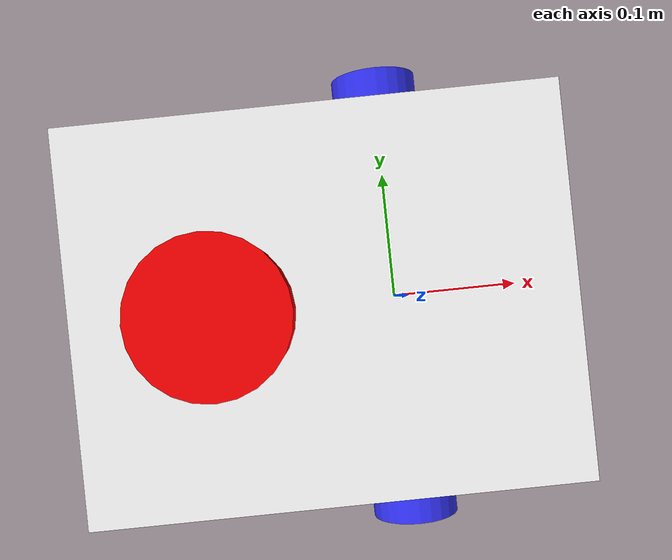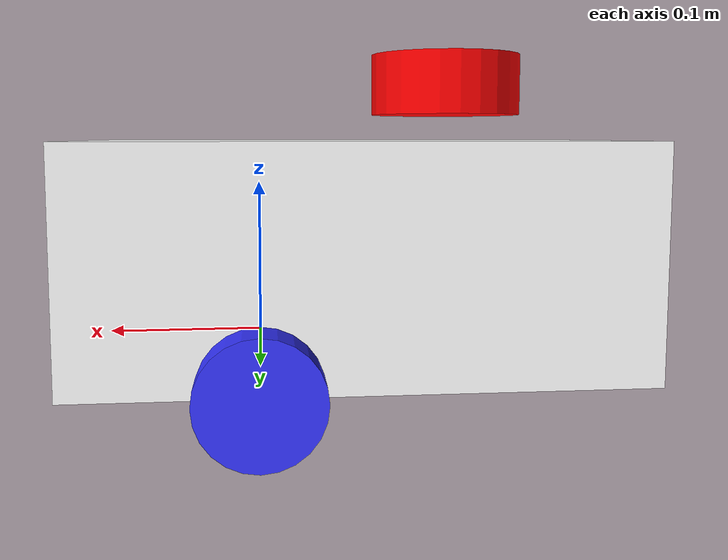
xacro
<?xml version="1.0"?>
<robot xmlns:xacro="http://www.ros.org/wiki/xacro"  name="robot">

    <xacro:include filename="robot_core.xacro" />

    <xacro:include filename="gazebo_control.xacro"/>

    <xacro:include filename="lidar.xacro"/>

</robot>

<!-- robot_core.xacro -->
<robot xmlns:xacro="http://www.ros.org/wiki/xacro" >

    <xacro:include filename="inertial_macros.xacro"/>

    <xacro:property name="chassis_length" value="0.335"/>
    <xacro:property name="chassis_width" value="0.265"/>
    <xacro:property name="chassis_height" value="0.138"/>
    <xacro:property name="chassis_mass" value="1.0"/>
    <xacro:property name="wheel_radius" value="0.034"/>
    <xacro:property name="wheel_thickness" value="0.026"/>
    <xacro:property name="wheel_mass" value="0.05"/>
    <xacro:property name="wheel_offset_x" value="0.226"/>
    <xacro:property name="wheel_offset_y" value="0.166"/>
    <xacro:property name="wheel_offset_z" value="0.01"/>
    <xacro:property name="caster_wheel_radius" value="0.01"/>
    <xacro:property name="caster_wheel_mass" value="0.01"/>
    <xacro:property name="caster_wheel_offset_x" value="0.075"/>
    <xacro:property name="caster_wheel_offset_z" value="${wheel_offset_z - wheel_radius + caster_wheel_radius}"/>

    <material name="white">
        <color rgba="1 1 1 1" />
    </material>

    <material name="orange">
        <color rgba="1 0.3 0.1 1" />
    </material>

    <material name="blue">
        <color rgba="0.2 0.2 1 1" />
    </material>

    <material name="black">
        <color rgba="0 0 0 1" />
    </material>

    <material name="red">
        <color rgba="1 0 0 1" />
    </material>

    <!-- BASE LINK-->
    <link name="base_link">

    </link>

    <!-- CHASSIS LINK-->
    <joint name="chassis_joint" type="fixed">
        <parent link="base_link"/>
        <child link="chassis"/>
        <origin xyz="${-wheel_offset_x} 0 ${-wheel_offset_z}"/>
    </joint>

    <link name="chassis">
        <visual>
            <!-- shift origin of box to center of diff drive wheels-->
            <origin xyz="${chassis_length/2} 0 ${chassis_height/2}"/>
            <geometry>
                <!-- in meters-->
                <box size="${chassis_length} ${chassis_width} ${chassis_height}"/>
            </geometry>
            <material name="white"/>
        </visual>
        <collision>
            <!-- shift origin of box to center of diff drive wheels-->
            <origin xyz="${chassis_length/2} 0 ${chassis_height/2}"/>
            <geometry>
                <!-- in meters-->
                <box size="${chassis_length} ${chassis_width} ${chassis_height}"/>
            </geometry>
        </collision>
        <xacro:inertial_box mass="0.5" x="${chassis_length}" y="${chassis_width}" z="${chassis_height}">
            <origin xyz="${chassis_length/2} 0 ${chassis_height/2}" rpy="0 0 0"/>
        </xacro:inertial_box>
    </link>

    <gazebo reference="chassis">
        <material>Gazebo/White</material>
    </gazebo>

    <!-- LEFT WHEEL LINK-->
    <joint name="left_wheel_joint" type="continuous">
        <parent link="base_link"/>
        <child link="left_wheel"/>
        <!-- rotate wheel so z is out of robot and so cylinder will be able to rotate-->
        <origin xyz="0 ${wheel_offset_y} 0" rpy="-${pi/2} 0 0" />
        <axis xyz="0 0 1"/>
    </joint>

    <link name="left_wheel">
        <visual>
            <geometry>
                <cylinder radius="${wheel_radius}" length="${wheel_thickness}"/>
            </geometry>
            <material name="blue"/>
        </visual>
        <collision>
            <geometry>
                <sphere radius="${wheel_radius}"/>
            </geometry>
        </collision>
        <xacro:inertial_cylinder mass="${wheel_mass}" length="${wheel_thickness}" radius="${wheel_radius}">
            <origin xyz="0 0 0" rpy="0 0 0"/>
        </xacro:inertial_cylinder>
    </link>

    <gazebo reference="left_wheel">
        <material>Gazebo/Blue</material>
    </gazebo>

    <!-- RIGHT WHEEL LINK-->
    <joint name="right_wheel_joint" type="continuous">
        <parent link="base_link"/>
        <child link="right_wheel"/>
        <!-- rotate wheel so z is out of robot and so cylinder will be able to rotate-->
        <origin xyz="0 ${-wheel_offset_y} 0" rpy="${pi/2} 0 0" />
        <axis xyz="0 0 -1"/>
    </joint>

    <link name="right_wheel">
        <visual>
            <geometry>
                <cylinder radius="${wheel_radius}" length="${wheel_thickness}"/>
            </geometry>
            <material name="blue"/>
        </visual>
        <collision>
            <geometry>
                <sphere radius="${wheel_radius}"/>
            </geometry>
        </collision>
        <xacro:inertial_cylinder mass="${wheel_mass}" length="${wheel_thickness}" radius="${wheel_radius}">
            <origin xyz="0 0 0" rpy="0 0 0"/>
        </xacro:inertial_cylinder>
    </link>

    <gazebo reference="right_wheel">
        <material>Gazebo/Blue</material>
    </gazebo>

    <!-- CASTER WHEEL LINK-->
    <joint name="caster_wheel_joint" type="fixed">
        <parent link="chassis"/>
        <child link="caster_wheel"/>
        <origin xyz="${caster_wheel_offset_x} 0 ${caster_wheel_offset_z}"/>
    </joint>

    <link name="caster_wheel">
        <visual>
            <geometry>
                <sphere radius="${caster_wheel_radius}"/>
            </geometry>
            <material name="black"/>
        </visual>
        <collision>
            <geometry>
                <sphere radius="${caster_wheel_radius}"/>
            </geometry>
        </collision>
        <xacro:inertial_sphere mass="${caster_wheel_mass}" radius="${caster_wheel_radius}">
            <origin xyz="0 0 0" rpy="0 0 0"/>
        </xacro:inertial_sphere>
    </link>

    <gazebo reference="caster_wheel">
        <material>Gazebo/Black</material>
        <mu1 value="0.001"/>
        <mu2 value="0.001"/>
    </gazebo>
</robot>

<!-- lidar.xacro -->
<robot xmlns:xacro="http://www.ros.org/wiki/xacro">

    <joint name="laser_joint" type="fixed">
        <parent link="chassis"/>
        <child link="laser_frame"/>
        <origin xyz="0.1 0 0.175" rpy="0 0 0"/>
    </joint>

    <link name="laser_frame">
        <visual>
            <geometry>
                <cylinder radius="0.05" length="0.04"/>
            </geometry>
            <material name="red"/>
        </visual>
        <collision>
            <geometry>
                <cylinder radius="0.05" length="0.04"/>
            </geometry>
        </collision>
        <xacro:inertial_cylinder mass="0.1" length="0.04" radius="0.05">
            <origin xyz="0 0 0" rpy="0 0 0"/>
        </xacro:inertial_cylinder>
    </link>

    <gazebo reference="laser_frame">
        <material>Gazebo/Red</material>
        <sensor name="laser" type="ray">
            <pose>0 0 0 0 0 0</pose>
            <visualize>true</visualize>
            <update_rate>30</update_rate>
            <ray>
                <scan>
                    <horizontal>
                        <samples>360</samples>
                        <resolution>1</resolution>
                        <min_angle>-3.14</min_angle>
                        <max_angle>3.14</max_angle>
                    </horizontal>
                </scan>
                <range>
                    <min>0.3</min>
                    <max>12</max>
                    <resolution>0.01</resolution>
                </range>
            </ray>
            <!-- plugin used for gazebo/ros interaction-->
            <plugin name="laser_controller" filename="libgazebo_ros_ray_sensor.so">
                <ros>
                    <remapping>~/out:=scan</remapping>
                </ros>
                <output_type>sensor_msgs/LaserScan</output_type>
                <frame_name>laser_frame</frame_name>
                <use_sim_time>true</use_sim_time>
            </plugin>
        </sensor>
    </gazebo>

</robot>
